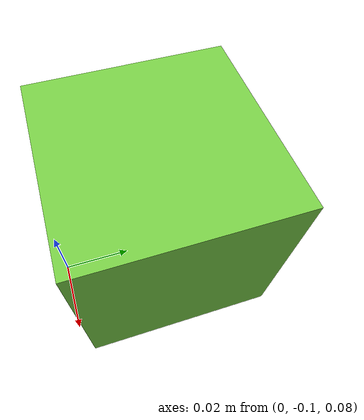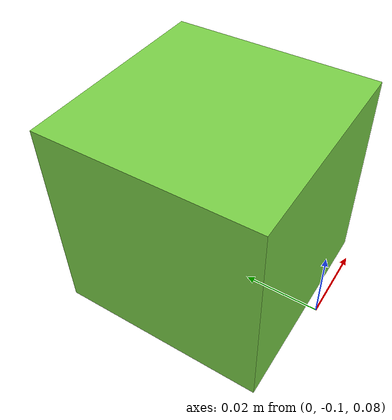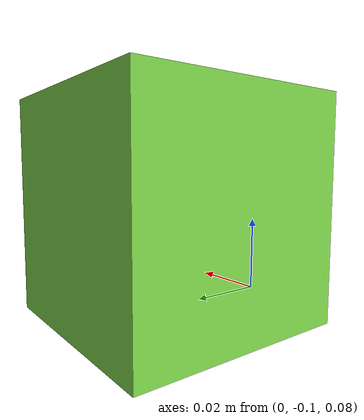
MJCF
<mujoco model="tactile_test_box">
  <compiler angle="radian"/>
  <asset>
    <material name="box_material" rgba="0.48 0.82 0.28 1" metallic="0.04" roughness="0.40"/>
  </asset>
  <worldbody>
    <body name="box_object" pos="0 -0.070 0.105" gravcomp="1">
      <freejoint name="box_object_free"/>
      <geom name="box_object_geom" type="box" size="0.027 0.027 0.027" mass="0.500"
            contype="1" conaffinity="1" material="box_material"/>
    </body>
  </worldbody>
</mujoco>
